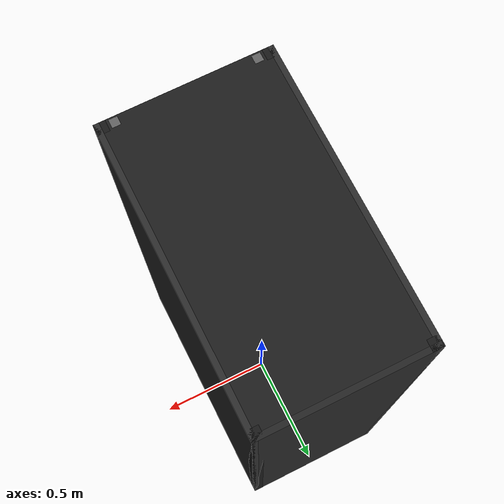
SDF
<?xml version="1.0"?>
<sdf version="1.9">
  <model name="calibration_plate_model">
    <static>true</static>

    <link name="rack_body">

      <inertial>
        <mass>60.0</mass>
        <pose>0 0 0.9335 0 0 0</pose>
        <inertia>
          <ixx>15.0</ixx>
          <iyy>12.0</iyy>
          <izz>5.0</izz>
        </inertia>
      </inertial>

      <collision name="rack_collision">
        <pose>0 0.11 0.9335 0 0 0</pose>
        <geometry>
          <box>
            <size>0.61 0.85 1.8669</size>
          </box>
        </geometry>
      </collision>

      <!-- ===================== VISUALS ===================== -->

      <!-- Bottom plate -->
      <visual name="bottom_plate">
        <pose>0 0 0.01 0 0 0</pose>
        <geometry>
          <box>
            <size>0.61 1.07 0.02</size>
          </box>
        </geometry>
        <material>
          <ambient>0.08 0.08 0.08 1</ambient>
          <diffuse>0.12 0.12 0.12 1</diffuse>
        </material>
      </visual>

      <!-- Top plate -->
      <visual name="top_plate">
        <pose>0 0 1.8569 0 0 0</pose>
        <geometry>
          <box>
            <size>0.61 1.07 0.02</size>
          </box>
        </geometry>
        <material>
          <ambient>0.08 0.08 0.08 1</ambient>
          <diffuse>0.12 0.12 0.12 1</diffuse>
        </material>
      </visual>

      <!-- Corner posts (4x), square 0.04 x 0.04 cross-section -->
      <visual name="post_front_left">
        <pose>-0.285 -0.515 0.9335 0 0 0</pose>
        <geometry>
          <box>
            <size>0.04 0.04 1.8669</size>
          </box>
        </geometry>
        <material>
          <ambient>0.05 0.05 0.05 1</ambient>
          <diffuse>0.1 0.1 0.1 1</diffuse>
        </material>
      </visual>

      <visual name="post_front_right">
        <pose>0.285 -0.515 0.9335 0 0 0</pose>
        <geometry>
          <box>
            <size>0.04 0.04 1.8669</size>
          </box>
        </geometry>
        <material>
          <ambient>0.05 0.05 0.05 1</ambient>
          <diffuse>0.1 0.1 0.1 1</diffuse>
        </material>
      </visual>

      <visual name="post_back_left">
        <pose>-0.285 0.515 0.9335 0 0 0</pose>
        <geometry>
          <box>
            <size>0.04 0.04 1.8669</size>
          </box>
        </geometry>
        <material>
          <ambient>0.05 0.05 0.05 1</ambient>
          <diffuse>0.1 0.1 0.1 1</diffuse>
        </material>
      </visual>

      <visual name="post_back_right">
        <pose>0.285 0.515 0.9335 0 0 0</pose>
        <geometry>
          <box>
            <size>0.04 0.04 1.8669</size>
          </box>
        </geometry>
        <material>
          <ambient>0.05 0.05 0.05 1</ambient>
          <diffuse>0.1 0.1 0.1 1</diffuse>
        </material>
      </visual>

      <!-- Side panels (left/right) -->
      <visual name="side_panel_left">
        <pose>-0.295 0 0.9335 0 0 0</pose>
        <geometry>
          <box>
            <size>0.02 1.07 1.8669</size>
          </box>
        </geometry>
        <material>
          <ambient>0.12 0.12 0.12 1</ambient>
          <diffuse>0.18 0.18 0.18 1</diffuse>
        </material>
      </visual>

      <visual name="side_panel_right">
        <pose>0.295 0 0.9335 0 0 0</pose>
        <geometry>
          <box>
            <size>0.02 1.07 1.8669</size>
          </box>
        </geometry>
        <material>
          <ambient>0.12 0.12 0.12 1</ambient>
          <diffuse>0.18 0.18 0.18 1</diffuse>
        </material>
      </visual>

      <!-- Back panel -->
      <visual name="back_panel">
        <pose>0 0.525 0.9335 0 0 0</pose>
        <geometry>
          <box>
            <size>0.61 0.02 1.8669</size>
          </box>
        </geometry>
        <material>
          <ambient>0.1 0.1 0.1 1</ambient>
          <diffuse>0.15 0.15 0.15 1</diffuse>
        </material>
      </visual>

      <!-- Front mounting rails (19" / 0.4826m apart), thin vertical strips -->
      <visual name="mount_rail_left">
        <pose>-0.2413 -0.515 0.9335 0 0 0</pose>
        <geometry>
          <box>
            <size>0.03 0.03 1.8669</size>
          </box>
        </geometry>
        <material>
          <ambient>0.3 0.3 0.3 1</ambient>
          <diffuse>0.4 0.4 0.4 1</diffuse>
        </material>
      </visual>

      <visual name="mount_rail_right">
        <pose>0.2413 -0.515 0.9335 0 0 0</pose>
        <geometry>
          <box>
            <size>0.03 0.03 1.8669</size>
          </box>
        </geometry>
        <material>
          <ambient>0.3 0.3 0.3 1</ambient>
          <diffuse>0.4 0.4 0.4 1</diffuse>
        </material>
      </visual>

      <!-- ===================== CALIBRATION PLATE ===================== -->
      <visual name="calib_plate_backing">
        <pose>0 -0.51 0.85 0 0 0</pose>
        <geometry>
          <box>
            <size>0.40 0.01 0.50</size>
          </box>
        </geometry>
        <material>
          <ambient>0.85 0.85 0.85 1</ambient>
          <diffuse>0.95 0.95 0.95 1</diffuse>
          <specular>0.02 0.02 0.02 1</specular>
        </material>
      </visual>

      <!-- The AprilTag itself: Standard41h12, id 0.-->
      <visual name="calib_plate_apriltag">
        <pose>0 -0.5155 0.85 -1.5708 0 0</pose>
        <geometry>
          <box>
            <size>0.19286 0.19286 0.001</size>
          </box>
        </geometry>
        <material>
          <ambient>1 1 1 1</ambient>
          <diffuse>1 1 1 1</diffuse>
          <pbr>
            <metal>
              <albedo_map>model://calibration_plate_model/materials/textures/tag41_12_00000.png</albedo_map>
              <metalness>0.0</metalness>
              <roughness>1.0</roughness>
            </metal>
          </pbr>
        </material>
      </visual>

    </link>
  </model>
</sdf>
